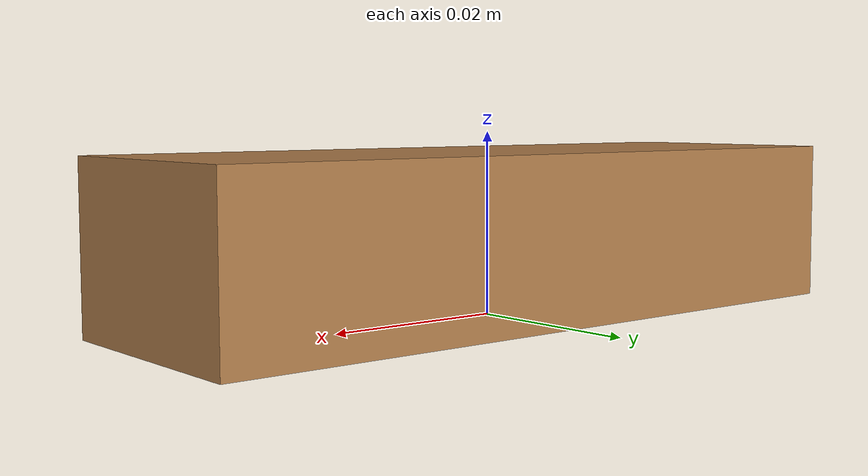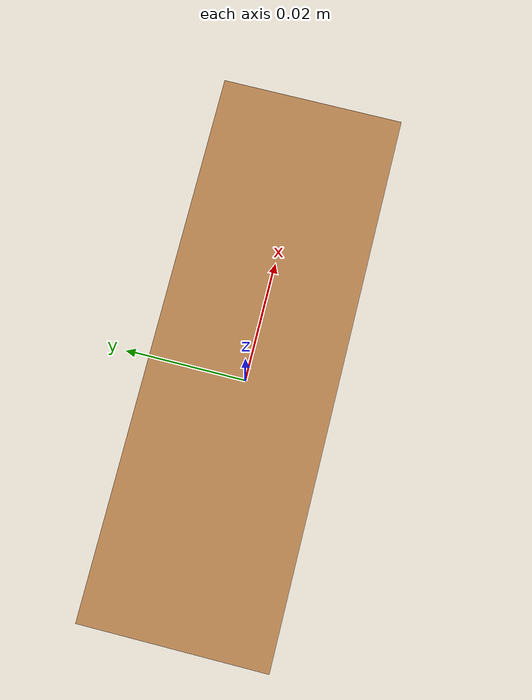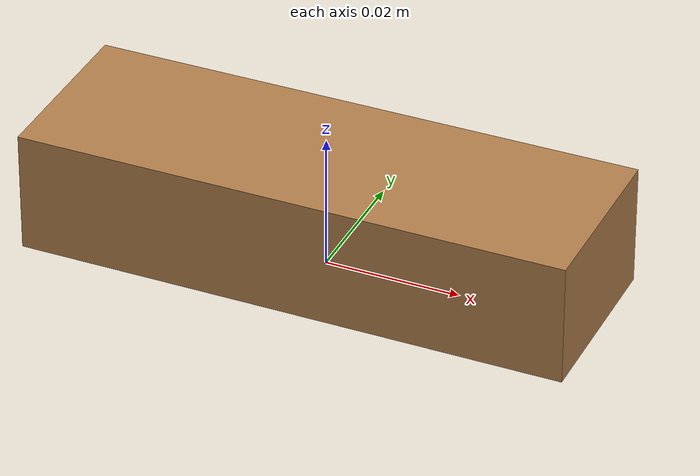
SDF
<?xml version="1.0" ?>
<sdf version="1.5">
  <model name="wood_block_8_3_2cm">
    <link name="block">
      <pose>0 0 0.009  0 0 0</pose>
      <self_collide>1</self_collide>
      <inertial>
        <mass>0.019682999999999996</mass>
        <inertia>
          <ixx>1.7271832499999993e-06</ixx>
          <iyy>1.1293121249999997e-05</iyy>
          <izz>1.1957422499999997e-05</izz>
          <ixy>0</ixy>
          <ixz>0</ixz>
          <iyz>0</iyz>
        </inertia>
      </inertial>
      <collision name="collision">
        <max_contacts>3</max_contacts>
        <geometry>
          <box>
            <size>0.081 0.027 0.018</size>
          </box>
        </geometry>
        <surface>
          <contact>
            <ode>
              <max_vel>1.0</max_vel>
              <min_depth>0.001</min_depth>
            </ode>
          </contact>
          <friction>
            <ode>
              <mu>0.4</mu>
              <mu2>0.4</mu2>
            </ode>
          </friction>
        </surface>
      </collision>
      <visual name="visual">
        <geometry>
          <box>
            <size>0.081 0.027 0.018</size>
          </box>
        </geometry>
        <material>
          <script>
            <uri>file://media/materials/scripts/gazebo.material</uri>
            <name>Gazebo/Wood</name>
          </script>
        </material>
      </visual>
    </link>
  </model>
</sdf>
